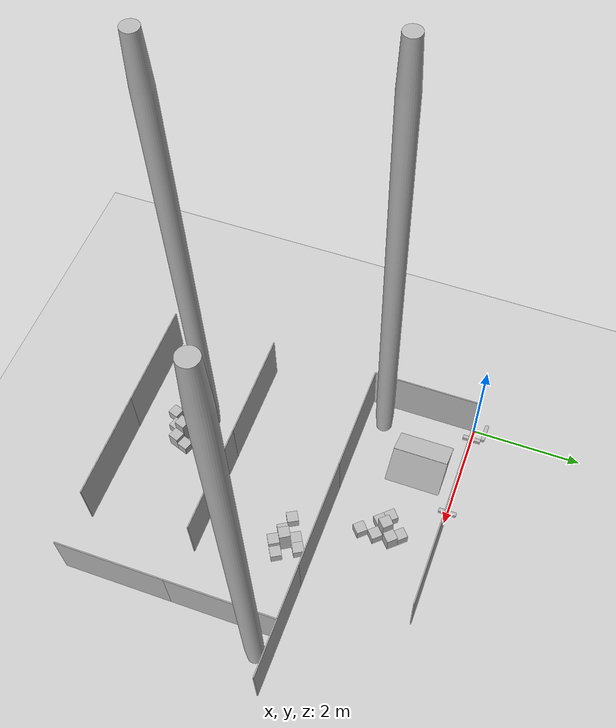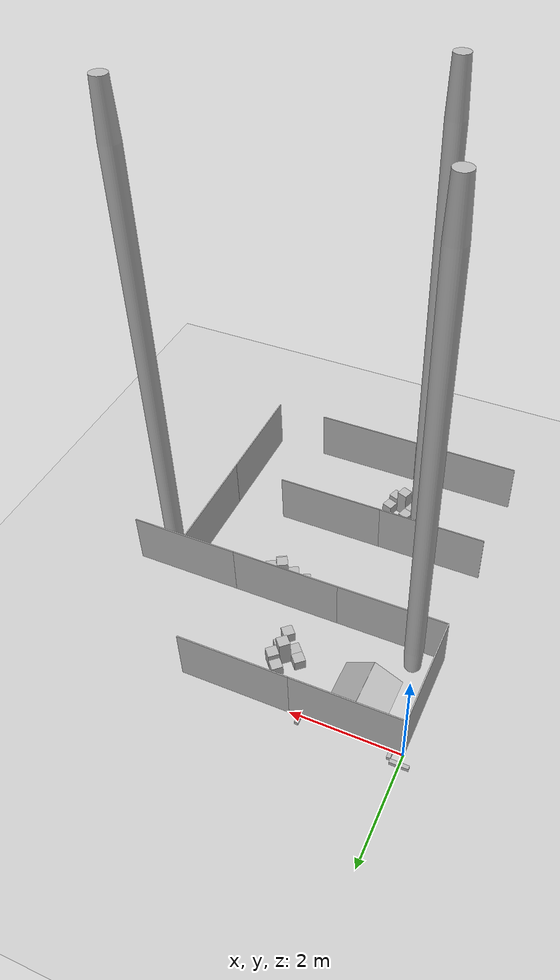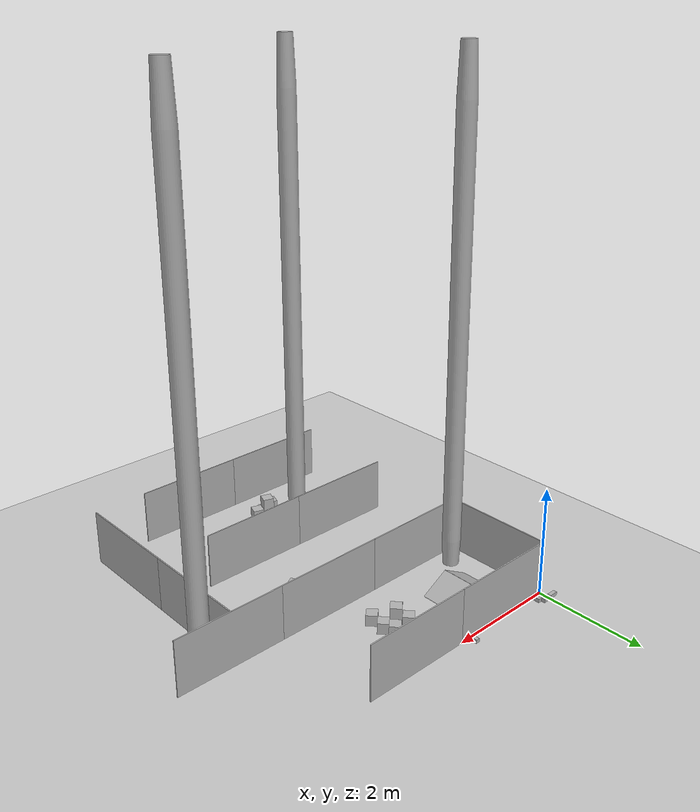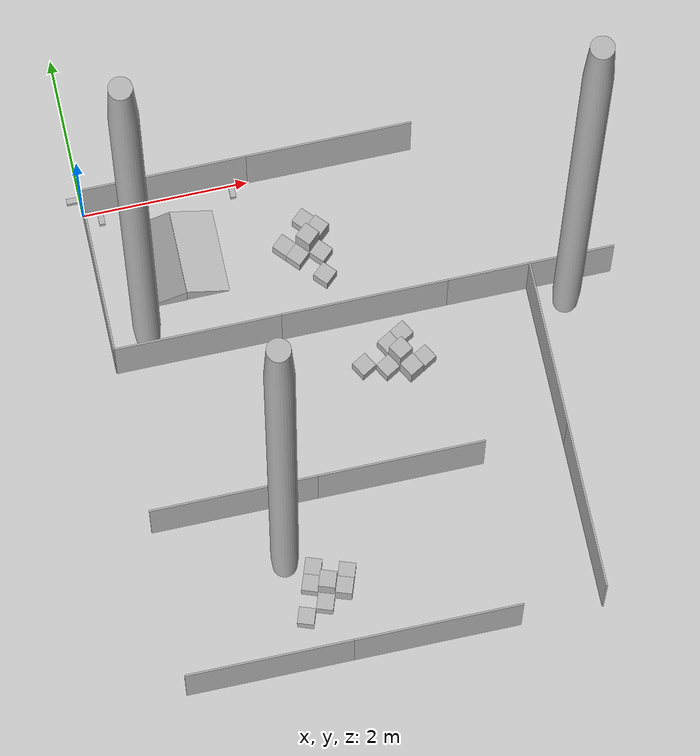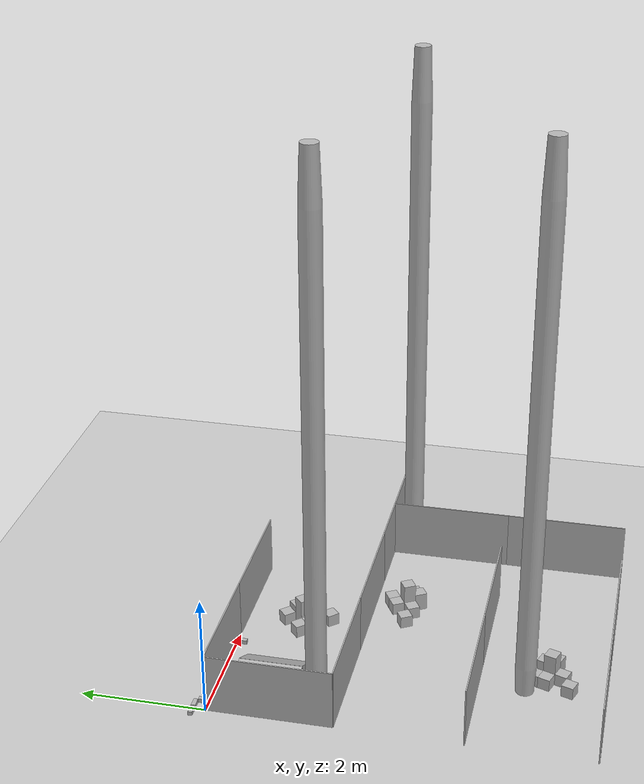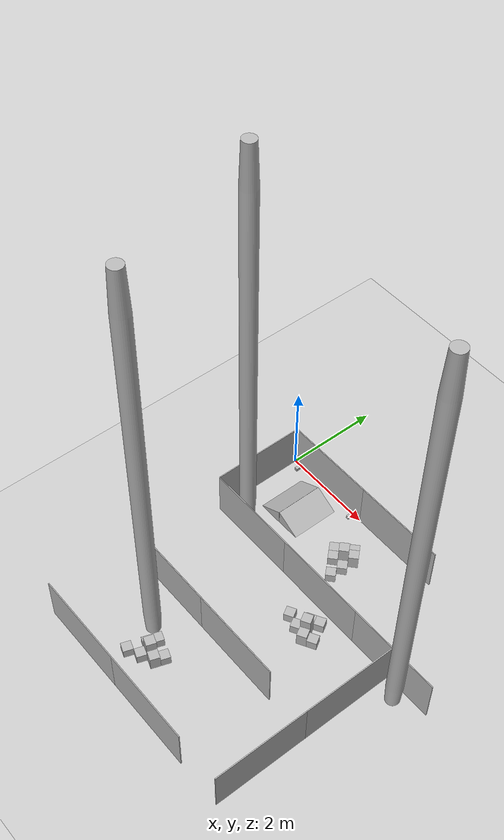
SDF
<sdf version="1.4">
 <world name="arena_HKT_13">
  <include><uri>model://ground_plane</uri></include>
  <include>
   <name>wall_2x1.552</name>
   <pose>1.0 -2.0 0.5130000114440918  0.0 0.0 0.0</pose>
   <uri>model://wall_2x1</uri>
  </include>
  <include>
   <name>wall_2x1.553</name>
   <pose>3.0 -2.0 0.5130000114440918  0.0 0.0 0.0</pose>
   <uri>model://wall_2x1</uri>
  </include>
  <include>
   <name>wall_2x1.554</name>
   <pose>5.0 -2.0 0.5130000114440918  0.0 0.0 0.0</pose>
   <uri>model://wall_2x1</uri>
  </include>
  <include>
   <name>wall_2x1.555</name>
   <pose>4.982755661010742 -3.0 0.5130000114440918  0.0 -0.0 1.570796251296997</pose>
   <uri>model://wall_2x1</uri>
  </include>
  <include>
   <name>wall_stand.1213</name>
   <pose>0.0 0.19949999451637268 0.03449999913573265  0.0 0.0 0.0</pose>
   <uri>model://wall_stand</uri>
  </include>
  <include>
   <name>wall_2x1.556</name>
   <pose>4.982755661010742 -5.0 0.5130000114440918  0.0 -0.0 1.570796251296997</pose>
   <uri>model://wall_2x1</uri>
  </include>
  <include>
   <name>wall_2x1.559</name>
   <pose>1.0 -6.0 0.5130000114440918  0.0 0.0 0.0</pose>
   <uri>model://wall_2x1</uri>
  </include>
  <include>
   <name>wall_2x1.560</name>
   <pose>3.0 -6.0 0.5130000114440918  0.0 0.0 0.0</pose>
   <uri>model://wall_2x1</uri>
  </include>
  <include>
   <name>wall_2x1.563</name>
   <pose>0.0 -1.0 0.5130000114440918  0.0 -0.0 1.570796251296997</pose>
   <uri>model://wall_2x1</uri>
  </include>
  <include>
   <name>wall_2x1.564</name>
   <pose>3.0 -4.0 0.5130000114440918  0.0 0.0 0.0</pose>
   <uri>model://wall_2x1</uri>
  </include>
  <include>
   <name>wall_2x1.565</name>
   <pose>1.0 -4.0 0.5130000114440918  0.0 0.0 0.0</pose>
   <uri>model://wall_2x1</uri>
  </include>
  <include>
   <name>wall_2x1.569</name>
   <pose>3.0 0.0 0.5130000114440918  0.0 0.0 0.0</pose>
   <uri>model://wall_2x1</uri>
  </include>
  <include>
   <name>wall_stand.1247</name>
   <pose>0.19949999451637268 0.0 0.03449999913573265  0.0 -0.0 1.570796251296997</pose>
   <uri>model://wall_stand</uri>
  </include>
  <include>
   <name>wall_stand.1248</name>
   <pose>1.8005000352859497 0.0 0.03449999913573265  0.0 -0.0 1.570796251296997</pose>
   <uri>model://wall_stand</uri>
  </include>
  <include>
   <name>wall_2x1.573</name>
   <pose>1.0 0.0 0.5130000114440918  0.0 0.0 0.0</pose>
   <uri>model://wall_2x1</uri>
  </include>
  <include>
   <name>wall_stand.1255</name>
   <pose>1.8005000352859497 0.0 0.03449999913573265  0.0 -0.0 1.570796251296997</pose>
   <uri>model://wall_stand</uri>
  </include>
  <include>
   <name>wall_stand.1256</name>
   <pose>0.19949999451637268 0.0 0.03449999913573265  0.0 -0.0 1.570796251296997</pose>
   <uri>model://wall_stand</uri>
  </include>
  <include>
   <name>cube_20x20.1426</name>
   <pose>2.3923449516296387 -1.071094274520874 0.10000000149011612  0.0 0.0 5.4528021812438965</pose>
   <uri>model://cube_20x20</uri>
  </include>
  <include>
   <name>cube_20x20.1427</name>
   <pose>2.674901008605957 -1.0838134288787842 0.10000000149011612  0.0 0.0 5.4528021812438965</pose>
   <uri>model://cube_20x20</uri>
  </include>
  <include>
   <name>cube_20x20.1428</name>
   <pose>2.6621813774108887 -1.3663697242736816 0.10000000149011612  0.0 0.0 5.4528021812438965</pose>
   <uri>model://cube_20x20</uri>
  </include>
  <include>
   <name>cube_20x20.1429</name>
   <pose>2.5527024269104004 -0.6536192893981934 0.10000000149011612  0.0 0.0 5.4528021812438965</pose>
   <uri>model://cube_20x20</uri>
  </include>
  <include>
   <name>cube_20x20.1430</name>
   <pose>2.3923449516296387 -1.071094274520874 0.10000000149011612  0.0 0.0 5.4528021812438965</pose>
   <uri>model://cube_20x20</uri>
  </include>
  <include>
   <name>cube_20x20.1431</name>
   <pose>2.674901008605957 -1.0838134288787842 0.10000000149011612  0.0 0.0 5.4528021812438965</pose>
   <uri>model://cube_20x20</uri>
  </include>
  <include>
   <name>cube_20x20.1432</name>
   <pose>2.6621813774108887 -1.3663697242736816 0.10000000149011612  0.0 0.0 5.4528021812438965</pose>
   <uri>model://cube_20x20</uri>
  </include>
  <include>
   <name>cube_20x20.1433</name>
   <pose>2.2574267387390137 -0.9234559535980225 0.10000000149011612  0.0 0.0 5.4528021812438965</pose>
   <uri>model://cube_20x20</uri>
  </include>
  <include>
   <name>cube_20x20.1434</name>
   <pose>2.5527024269104004 -0.6536192893981934 0.10000000149011612  0.0 0.0 5.4528021812438965</pose>
   <uri>model://cube_20x20</uri>
  </include>
  <include>
   <name>cube_20x20.1445</name>
   <pose>3.2194247245788574 -2.3717634677886963 0.10000000149011612  0.0 -0.0 3.6651763916015625</pose>
   <uri>model://cube_20x20</uri>
  </include>
  <include>
   <name>cube_20x20.1446</name>
   <pose>2.873011827468872 -2.5717580318450928 0.10000000149011612  0.0 -0.0 3.6651763916015625</pose>
   <uri>model://cube_20x20</uri>
  </include>
  <include>
   <name>cube_20x20.1447</name>
   <pose>3.3926315307617188 -2.271765947341919 0.10000000149011612  0.0 -0.0 3.6651763916015625</pose>
   <uri>model://cube_20x20</uri>
  </include>
  <include>
   <name>cube_20x20.1448</name>
   <pose>3.5926260948181152 -2.6181790828704834 0.10000000149011612  0.0 -0.0 3.6651763916015625</pose>
   <uri>model://cube_20x20</uri>
  </include>
  <include>
   <name>cube_20x20.1449</name>
   <pose>3.2194247245788574 -2.3717634677886963 0.10000000149011612  0.0 -0.0 3.6651763916015625</pose>
   <uri>model://cube_20x20</uri>
  </include>
  <include>
   <name>cube_20x20.1450</name>
   <pose>3.1462156772613525 -2.6449673175811768 0.10000000149011612  0.0 -0.0 3.6651763916015625</pose>
   <uri>model://cube_20x20</uri>
  </include>
  <include>
   <name>cube_20x20.1451</name>
   <pose>2.873011827468872 -2.5717580318450928 0.10000000149011612  0.0 -0.0 3.6651763916015625</pose>
   <uri>model://cube_20x20</uri>
  </include>
  <include>
   <name>cube_20x20.1452</name>
   <pose>3.3926315307617188 -2.271765947341919 0.10000000149011612  0.0 -0.0 3.6651763916015625</pose>
   <uri>model://cube_20x20</uri>
  </include>
  <include>
   <name>cube_20x20.1453</name>
   <pose>3.5926260948181152 -2.6181790828704834 0.10000000149011612  0.0 -0.0 3.6651763916015625</pose>
   <uri>model://cube_20x20</uri>
  </include>
  <include>
   <name>cube_20x20.1454</name>
   <pose>1.691523790359497 -5.038193702697754 0.10000000149011612  0.0 0.0 4.376082897186279</pose>
   <uri>model://cube_20x20</uri>
  </include>
  <include>
   <name>cube_20x20.1455</name>
   <pose>1.8143196105957031 -5.292989730834961 0.10000000149011612  0.0 0.0 4.376082897186279</pose>
   <uri>model://cube_20x20</uri>
  </include>
  <include>
   <name>cube_20x20.1456</name>
   <pose>1.559523105621338 -5.415785789489746 0.10000000149011612  0.0 0.0 4.376082897186279</pose>
   <uri>model://cube_20x20</uri>
  </include>
  <include>
   <name>cube_20x20.1457</name>
   <pose>1.7575247287750244 -4.849397659301758 0.10000000149011612  0.0 0.0 4.376082897186279</pose>
   <uri>model://cube_20x20</uri>
  </include>
  <include>
   <name>cube_20x20.1458</name>
   <pose>2.1351163387298584 -4.981398582458496 0.10000000149011612  0.0 0.0 4.376082897186279</pose>
   <uri>model://cube_20x20</uri>
  </include>
  <include>
   <name>cube_20x20.1459</name>
   <pose>1.691523790359497 -5.038193702697754 0.10000000149011612  0.0 0.0 4.376082897186279</pose>
   <uri>model://cube_20x20</uri>
  </include>
  <include>
   <name>cube_20x20.1460</name>
   <pose>1.8143196105957031 -5.292989730834961 0.10000000149011612  0.0 0.0 4.376082897186279</pose>
   <uri>model://cube_20x20</uri>
  </include>
  <include>
   <name>cube_20x20.1461</name>
   <pose>1.559523105621338 -5.415785789489746 0.10000000149011612  0.0 0.0 4.376082897186279</pose>
   <uri>model://cube_20x20</uri>
  </include>
  <include>
   <name>cube_20x20.1462</name>
   <pose>1.7575247287750244 -4.849397659301758 0.10000000149011612  0.0 0.0 4.376082897186279</pose>
   <uri>model://cube_20x20</uri>
  </include>
  <include>
   <name>cube_20x20.1463</name>
   <pose>2.1351163387298584 -4.981398582458496 0.10000000149011612  0.0 0.0 4.376082897186279</pose>
   <uri>model://cube_20x20</uri>
  </include>
  <include>
   <name>cube_20x30.256</name>
   <pose>2.6876208782196045 -0.8012573719024658 0.15000000596046448  0.0 0.0 5.4528021812438965</pose>
   <uri>model://cube_20x30</uri>
  </include>
  <include>
   <name>cube_20x30.257</name>
   <pose>2.6876208782196045 -0.8012573719024658 0.15000000596046448  0.0 0.0 5.4528021812438965</pose>
   <uri>model://cube_20x30</uri>
  </include>
  <include>
   <name>cube_20x30.260</name>
   <pose>3.419419288635254 -2.7181766033172607 0.15000000596046448  0.0 -0.0 3.6651763916015625</pose>
   <uri>model://cube_20x30</uri>
  </include>
  <include>
   <name>cube_20x30.261</name>
   <pose>3.419419288635254 -2.7181766033172607 0.15000000596046448  0.0 -0.0 3.6651763916015625</pose>
   <uri>model://cube_20x30</uri>
  </include>
  <include>
   <name>cube_20x30.262</name>
   <pose>2.06911563873291 -5.170195579528809 0.15000000596046448  0.0 0.0 4.376082897186279</pose>
   <uri>model://cube_20x30</uri>
  </include>
  <include>
   <name>cube_20x30.263</name>
   <pose>2.06911563873291 -5.170195579528809 0.15000000596046448  0.0 0.0 4.376082897186279</pose>
   <uri>model://cube_20x30</uri>
  </include>
  <include>
   <name>cube_20x50.250</name>
   <pose>2.5399835109710693 -0.9361758232116699 0.25  0.0 0.0 5.4528021812438965</pose>
   <uri>model://cube_20x50</uri>
  </include>
  <include>
   <name>cube_20x50.251</name>
   <pose>2.5399835109710693 -0.9361758232116699 0.25  0.0 0.0 5.4528021812438965</pose>
   <uri>model://cube_20x50</uri>
  </include>
  <include>
   <name>cube_20x50.254</name>
   <pose>3.3194220066070557 -2.5449702739715576 0.25  0.0 -0.0 3.6651763916015625</pose>
   <uri>model://cube_20x50</uri>
  </include>
  <include>
   <name>cube_20x50.255</name>
   <pose>3.3194220066070557 -2.5449702739715576 0.25  0.0 -0.0 3.6651763916015625</pose>
   <uri>model://cube_20x50</uri>
  </include>
  <include>
   <name>cube_20x50.256</name>
   <pose>1.8803200721740723 -5.104194641113281 0.25  0.0 0.0 4.376082897186279</pose>
   <uri>model://cube_20x50</uri>
  </include>
  <include>
   <name>cube_20x50.257</name>
   <pose>1.8803200721740723 -5.104194641113281 0.25  0.0 0.0 4.376082897186279</pose>
   <uri>model://cube_20x50</uri>
  </include>
  <include>
   <name>ramp.121</name>
   <pose>1.2565653324127197 -0.7687876224517822 0.15000000596046448  0.0 0.0 0.0</pose>
   <uri>model://ramp</uri>
  </include>
  <include>
   <name>ramp.122</name>
   <pose>0.7436184883117676 -0.7737877368927002 0.15000000596046448  0.0 -0.0 3.141592502593994</pose>
   <uri>model://ramp</uri>
  </include>
  <include>
   <name>barrel_110l.099</name>
   <pose>5.388793468475342 -2.267934560775757 0.0  0.0 0.0 0.0</pose>
   <uri>model://barrel_110l</uri>
  </include>
  <include>
   <name>barrel_110l.102</name>
   <pose>0.44654905796051025 -1.6463472843170166 0.0  0.0 0.0 0.0</pose>
   <uri>model://barrel_110l</uri>
  </include>
  <include>
   <name>barrel_110l.103</name>
   <pose>1.4479990005493164 -4.73142147064209 0.0  0.0 0.0 0.0</pose>
   <uri>model://barrel_110l</uri>
  </include>
 </world>
</sdf>
